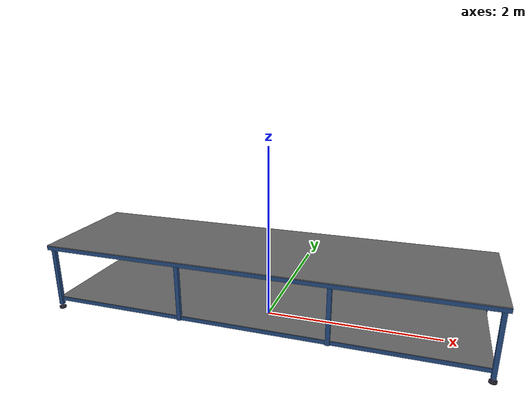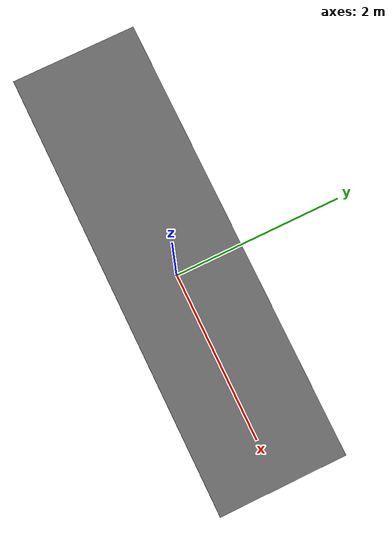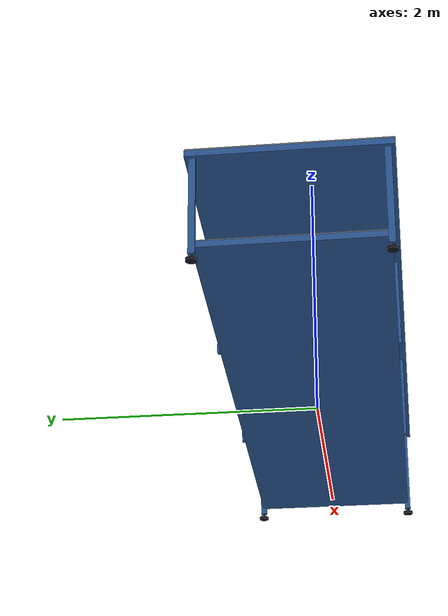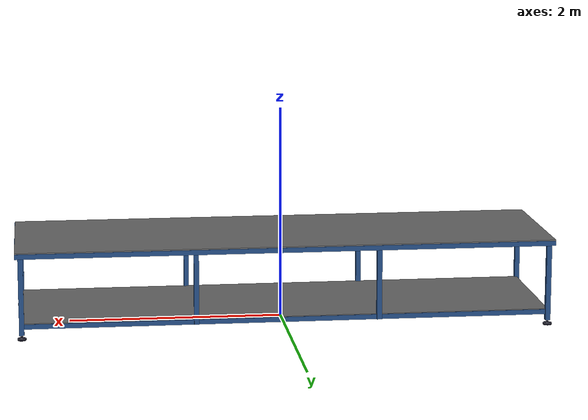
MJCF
<?xml version="1.0" encoding="utf-8"?>
<mujoco model="big table">
    <compiler angle="radian" />

    <default>
        <default class="vention">
            <geom conaffinity="0" contype="0" group="1"/>
            <default class="vention_collision">
                <geom conaffinity="1" condim="3" contype="0" group="3" margin="0.001" rgba=".4 .5 .6 1"/>
            </default>
        </default>
    </default>

    <asset>
        <material name="vention_black" rgba="0.05 0.05 0.1 1" reflectance="0" shininess=".5"  />
        <material name="vention_white" rgba="0.4 0.4 0.4 1" reflectance="0." shininess=".1"  />
        <material name="vention_blue" rgba=".14 .30 .52 1" reflectance="10" shininess=".1"  />
    </asset>

    <worldbody>
        <body name="vention table" childclass="vention">
            <!-- leg floor pads -->
            <geom type="cylinder" size="0.040 0.010" pos="-2.45 -.65 0.010" material="vention_black"/>
            <geom type="cylinder" size="0.040 0.010" pos="2.45 -.65 0.010" material="vention_black"/>
            <geom type="cylinder" size="0.040 0.010" pos="-2.45 0.65 0.010" material="vention_black"/>
            <geom type="cylinder" size="0.040 0.010" pos="2.45 0.65 0.010" material="vention_black"/>

            <!-- leg pad stems -->
            <geom type="cylinder" size="0.010 0.020" pos="-2.45 -.65 0.030" material="vention_black"/>
            <geom type="cylinder" size="0.010 0.020" pos="2.45 -.65 0.030" material="vention_black"/>
            <geom type="cylinder" size="0.010 0.020" pos="-2.45 0.65 0.030" material="vention_black"/>
            <geom type="cylinder" size="0.010 0.020" pos="2.45 0.65 0.030" material="vention_black"/>

            <!-- legs -->
            <geom type="box" size="0.023 0.023 .387" pos="-2.45 -.65 0.435" material="vention_blue"/>
            <geom type="box" size="0.023 0.023 .387" pos="2.45 -.65 0.435" material="vention_blue"/>
            <geom type="box" size="0.023 0.023 .387" pos="-2.45 0.65 0.435" material="vention_blue"/>
            <geom type="box" size="0.023 0.023 .387" pos="2.45 0.65 0.435" material="vention_blue"/>

            <!-- middle legs (two per long side) -->
            <geom type="box" size="0.023 0.023 .337" pos="-0.85 0.65 0.440" material="vention_blue"/>
            <geom type="box" size="0.023 0.023 .337" pos="0.85 0.65 0.440" material="vention_blue"/>
            <geom type="box" size="0.023 0.023 .337" pos="-0.85 -.65 0.440" material="vention_blue"/>
            <geom type="box" size="0.023 0.023 .337" pos="0.85 -.65 0.440" material="vention_blue"/>

            <!-- top board -->
            <geom type="box" size="2.500 0.700 0.023" pos="0 0 0.801" material="vention_white"/>
            <geom type="box" size="2.502 0.702 0.023" pos="0 0 0.790" material="vention_blue"/>

            <!-- bottom board -->
            <geom type="box" size="2.450 0.650 0.005" pos="0 0 0.150" material="vention_white"/>
            <geom type="box" size="2.452 0.652 0.023" pos="0 0 0.124" material="vention_blue"/>

            <!-- collision -->
            <geom type="box" size="2.502 0.702 0.411" pos="0 0 0.413" class="vention_collision"/>
        </body>
    </worldbody>

</mujoco>
